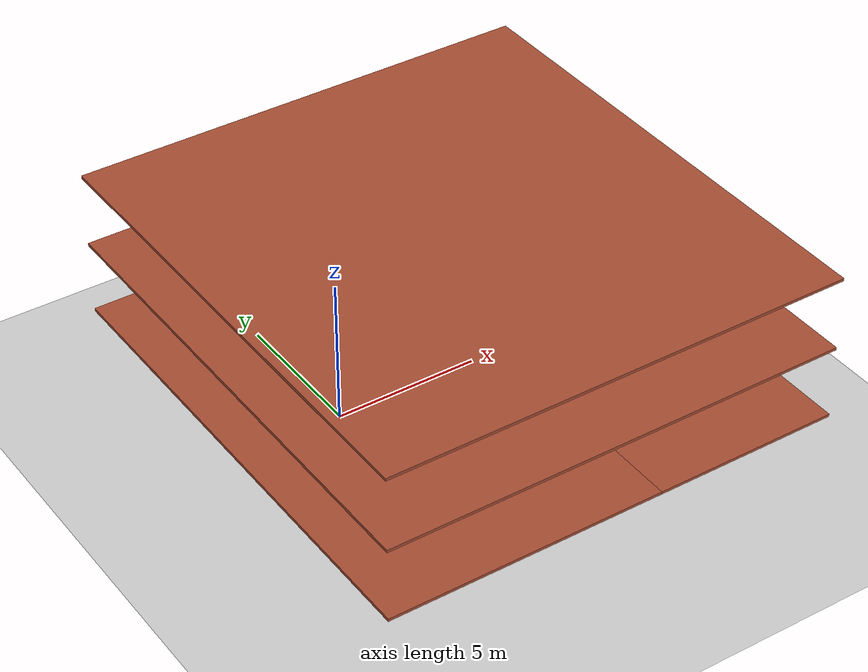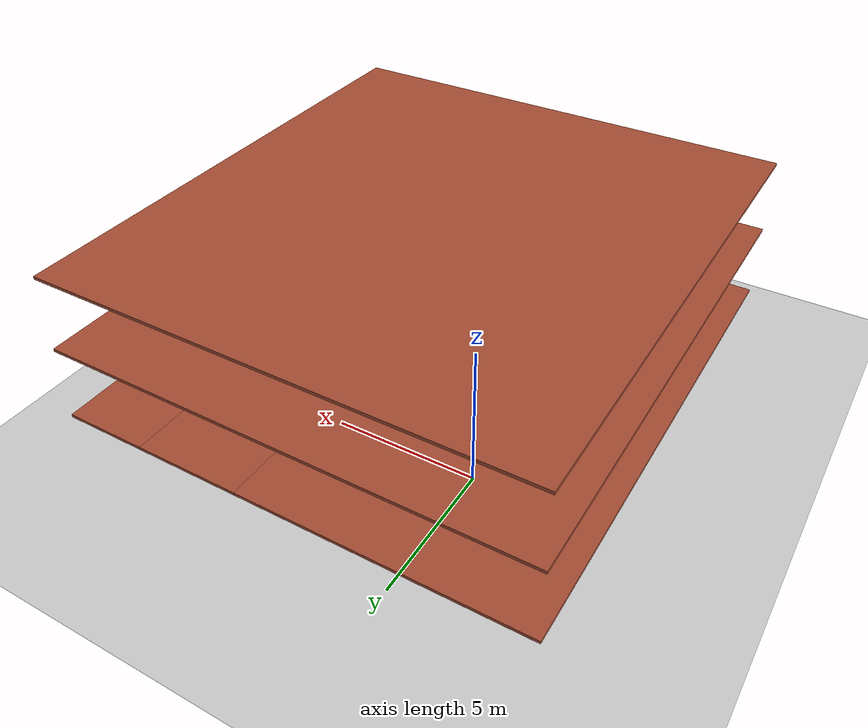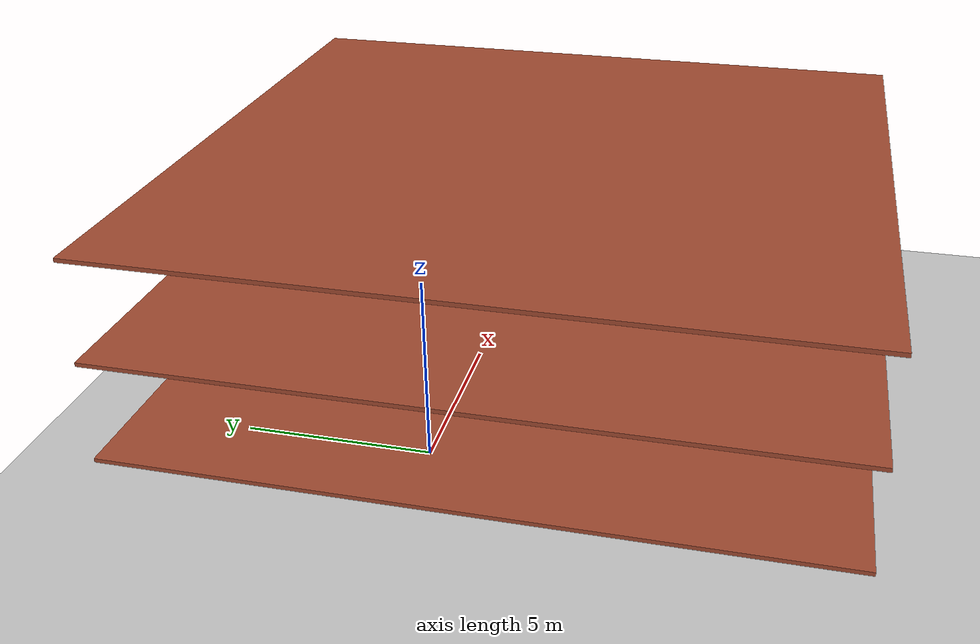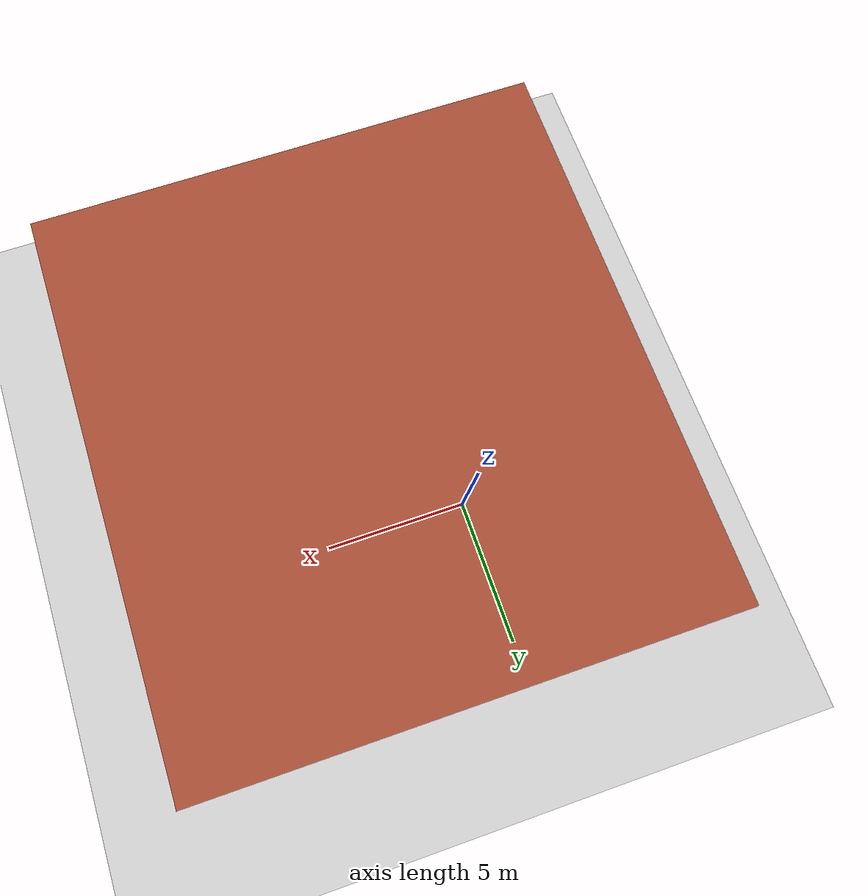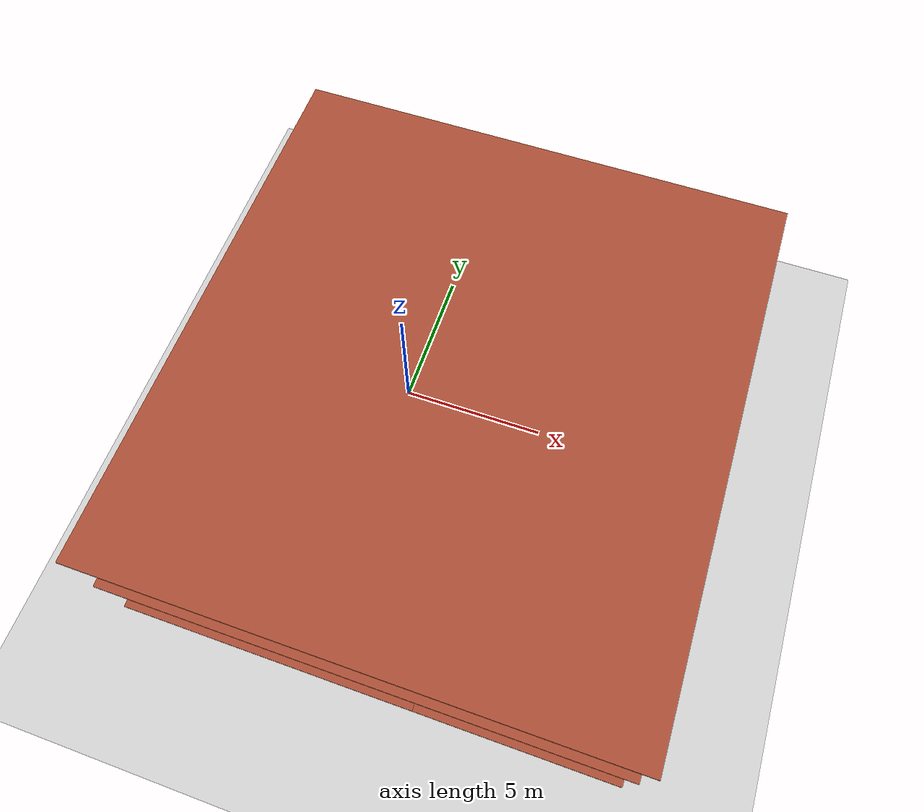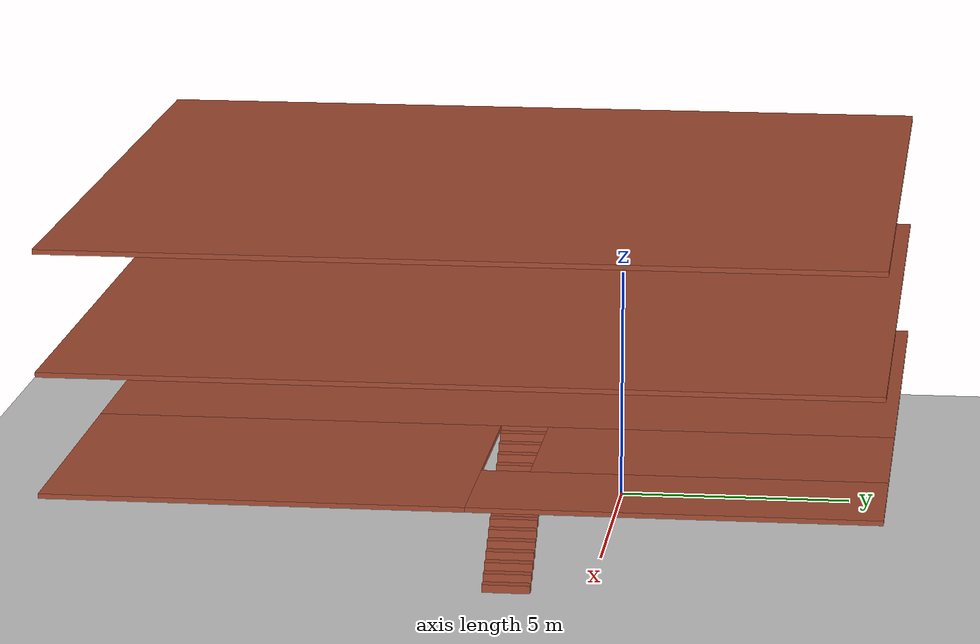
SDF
<sdf version="1.7">
 <world name="default">
  <model name="ground_plane">
   <static>1</static>
   <link name="link">
    <collision name="collision">
     <geometry><plane><normal>0 0 1</normal><size>300 300</size></plane></geometry>
     <surface>
      <contact><collide_bitmask>65535</collide_bitmask></contact>
      <friction><ode><mu>100</mu><mu2>50</mu2></ode></friction>
     </surface>
    </collision>
    <visual name="visual">
     <cast_shadows>0</cast_shadows>
     <geometry><plane><normal>0 0 1</normal><size>300 300</size></plane></geometry>
     <material>
      <script><uri>file://media/materials/scripts/gazebo.material</uri><name>Gazebo/Grey</name></script>
     </material>
    </visual>
   </link>
  </model>
  <model name="Drone_House">
   <pose>2.65602 -2.34694 0 0 -0 0</pose>
   <link name="Floor_0">
    <pose>-1e-06 0 2.5 0 -0 0</pose>
    <visual name="Floor_0_Visual_0">
     <pose>-3.13292 0 0.05 0 -0 0</pose>
     <geometry><box><size>9.33629 16.85 0.1</size></box></geometry>
     <material>
      <script><uri>file://media/materials/scripts/gazebo.material</uri><name>Gazebo/Bricks</name></script>
      <ambient>1 1 1 1</ambient>
     </material>
     <meta><layer>1</layer></meta>
    </visual>
    <collision name="Floor_0_Collision_0">
     <geometry><box><size>9.33629 16.85 0.1</size></box></geometry>
     <pose>-3.13292 0 0.05 0 -0 0</pose>
    </collision>
    <visual name="Floor_0_Visual_1">
     <pose>4.66814 -4.13229 0.05 0 -0 0</pose>
     <geometry><box><size>6.26584 8.58542 0.1</size></box></geometry>
     <material>
      <script><uri>file://media/materials/scripts/gazebo.material</uri><name>Gazebo/Bricks</name></script>
      <ambient>1 1 1 1</ambient>
     </material>
     <meta><layer>1</layer></meta>
    </visual>
    <collision name="Floor_0_Collision_1">
     <geometry><box><size>6.26584 8.58542 0.1</size></box></geometry>
     <pose>4.66814 -4.13229 0.05 0 -0 0</pose>
    </collision>
    <visual name="Floor_0_Visual_2">
     <pose>6.41814 4.29271 0.05 0 -0 0</pose>
     <geometry><box><size>2.76584 8.26458 0.1</size></box></geometry>
     <material>
      <script><uri>file://media/materials/scripts/gazebo.material</uri><name>Gazebo/Bricks</name></script>
      <ambient>1 1 1 1</ambient>
     </material>
     <meta><layer>1</layer></meta>
    </visual>
    <collision name="Floor_0_Collision_2">
     <geometry><box><size>2.76584 8.26458 0.1</size></box></geometry>
     <pose>6.41814 4.29271 0.05 0 -0 0</pose>
    </collision>
    <visual name="Floor_0_Visual_3">
     <pose>3.28522 4.79271 0.05 0 -0 0</pose>
     <geometry><box><size>3.5 7.26458 0.1</size></box></geometry>
     <material>
      <script><uri>file://media/materials/scripts/gazebo.material</uri><name>Gazebo/Bricks</name></script>
      <ambient>1 1 1 1</ambient>
     </material>
     <meta><layer>1</layer></meta>
    </visual>
    <collision name="Floor_0_Collision_3">
     <geometry><box><size>3.5 7.26458 0.1</size></box></geometry>
     <pose>3.28522 4.79271 0.05 0 -0 0</pose>
    </collision>
   </link>
   <link name="Floor_5">
    <collision name="Floor_5_Collision">
     <geometry><box><size>15.6021 16.85 0.1</size></box></geometry>
     <pose>0 0 0.05 0 -0 0</pose>
    </collision>
    <visual name="Floor_5_Visual">
     <pose>0 0 0.05 0 -0 0</pose>
     <geometry><box><size>15.6021 16.85 0.1</size></box></geometry>
     <material>
      <script><uri>file://media/materials/scripts/gazebo.material</uri><name>Gazebo/Bricks</name></script>
      <ambient>1 1 1 1</ambient>
     </material>
     <meta><layer>2</layer></meta>
    </visual>
    <pose>-1e-06 0 5 0 -0 0</pose>
   </link>
   <link name="Floor_6">
    <collision name="Floor_6_Collision">
     <geometry><box><size>15.6021 16.85 0.1</size></box></geometry>
     <pose>0 0 0.05 0 -0 0</pose>
    </collision>
    <visual name="Floor_6_Visual">
     <pose>0 0 0.05 0 -0 0</pose>
     <geometry><box><size>15.6021 16.85 0.1</size></box></geometry>
     <material>
      <script><uri>file://media/materials/scripts/gazebo.material</uri><name>Gazebo/Bricks</name></script>
      <ambient>1 1 1 1</ambient>
     </material>
     <meta><layer>3</layer></meta>
    </visual>
    <pose>-1e-06 0 7.5 0 -0 0</pose>
   </link>
   <link name="Stairs_0">
    <visual name="Stairs_0_Visual_0">
     <pose>4.91856 0.660416 0.083333 0 -0 -1.5708</pose>
     <geometry><box><size>1 0.233333 0.166667</size></box></geometry>
     <material>
      <script><uri>file://media/materials/scripts/gazebo.material</uri><name>Gazebo/Bricks</name></script>
      <ambient>1 1 1 1</ambient>
     </material>
     <meta><layer>0</layer></meta>
    </visual>
    <collision name="Stairs_0_Collision_0">
     <geometry><box><size>1 0.233333 0.166667</size></box></geometry>
     <pose>4.91856 0.660416 0.083333 0 -0 -1.5708</pose>
    </collision>
    <visual name="Stairs_0_Visual_1">
     <pose>4.68522 0.660416 0.25 0 -0 -1.5708</pose>
     <geometry><box><size>1 0.233333 0.166667</size></box></geometry>
     <material>
      <script><uri>file://media/materials/scripts/gazebo.material</uri><name>Gazebo/Bricks</name></script>
      <ambient>1 1 1 1</ambient>
     </material>
     <meta><layer>0</layer></meta>
    </visual>
    <collision name="Stairs_0_Collision_1">
     <geometry><box><size>1 0.233333 0.166667</size></box></geometry>
     <pose>4.68522 0.660416 0.25 0 -0 -1.5708</pose>
    </collision>
    <visual name="Stairs_0_Visual_2">
     <pose>4.45189 0.660416 0.416667 0 -0 -1.5708</pose>
     <geometry><box><size>1 0.233333 0.166667</size></box></geometry>
     <material>
      <script><uri>file://media/materials/scripts/gazebo.material</uri><name>Gazebo/Bricks</name></script>
      <ambient>1 1 1 1</ambient>
     </material>
     <meta><layer>0</layer></meta>
    </visual>
    <collision name="Stairs_0_Collision_2">
     <geometry><box><size>1 0.233333 0.166667</size></box></geometry>
     <pose>4.45189 0.660416 0.416667 0 -0 -1.5708</pose>
    </collision>
    <visual name="Stairs_0_Visual_3">
     <pose>4.21856 0.660416 0.583333 0 -0 -1.5708</pose>
     <geometry><box><size>1 0.233333 0.166667</size></box></geometry>
     <material>
      <script><uri>file://media/materials/scripts/gazebo.material</uri><name>Gazebo/Bricks</name></script>
      <ambient>1 1 1 1</ambient>
     </material>
     <meta><layer>0</layer></meta>
    </visual>
    <collision name="Stairs_0_Collision_3">
     <geometry><box><size>1 0.233333 0.166667</size></box></geometry>
     <pose>4.21856 0.660416 0.583333 0 -0 -1.5708</pose>
    </collision>
    <visual name="Stairs_0_Visual_4">
     <pose>3.98522 0.660417 0.75 0 -0 -1.5708</pose>
     <geometry><box><size>1 0.233333 0.166667</size></box></geometry>
     <material>
      <script><uri>file://media/materials/scripts/gazebo.material</uri><name>Gazebo/Bricks</name></script>
      <ambient>1 1 1 1</ambient>
     </material>
     <meta><layer>0</layer></meta>
    </visual>
    <collision name="Stairs_0_Collision_4">
     <geometry><box><size>1 0.233333 0.166667</size></box></geometry>
     <pose>3.98522 0.660417 0.75 0 -0 -1.5708</pose>
    </collision>
    <visual name="Stairs_0_Visual_5">
     <pose>3.75189 0.660417 0.916667 0 -0 -1.5708</pose>
     <geometry><box><size>1 0.233333 0.166667</size></box></geometry>
     <material>
      <script><uri>file://media/materials/scripts/gazebo.material</uri><name>Gazebo/Bricks</name></script>
      <ambient>1 1 1 1</ambient>
     </material>
     <meta><layer>0</layer></meta>
    </visual>
    <collision name="Stairs_0_Collision_5">
     <geometry><box><size>1 0.233333 0.166667</size></box></geometry>
     <pose>3.75189 0.660417 0.916667 0 -0 -1.5708</pose>
    </collision>
    <visual name="Stairs_0_Visual_6">
     <pose>3.51856 0.660417 1.08333 0 -0 -1.5708</pose>
     <geometry><box><size>1 0.233333 0.166667</size></box></geometry>
     <material>
      <script><uri>file://media/materials/scripts/gazebo.material</uri><name>Gazebo/Bricks</name></script>
      <ambient>1 1 1 1</ambient>
     </material>
     <meta><layer>0</layer></meta>
    </visual>
    <collision name="Stairs_0_Collision_6">
     <geometry><box><size>1 0.233333 0.166667</size></box></geometry>
     <pose>3.51856 0.660417 1.08333 0 -0 -1.5708</pose>
    </collision>
    <visual name="Stairs_0_Visual_7">
     <pose>3.28522 0.660417 1.25 0 -0 -1.5708</pose>
     <geometry><box><size>1 0.233333 0.166667</size></box></geometry>
     <material>
      <script><uri>file://media/materials/scripts/gazebo.material</uri><name>Gazebo/Bricks</name></script>
      <ambient>1 1 1 1</ambient>
     </material>
     <meta><layer>0</layer></meta>
    </visual>
    <collision name="Stairs_0_Collision_7">
     <geometry><box><size>1 0.233333 0.166667</size></box></geometry>
     <pose>3.28522 0.660417 1.25 0 -0 -1.5708</pose>
    </collision>
    <visual name="Stairs_0_Visual_8">
     <pose>3.05189 0.660417 1.41667 0 -0 -1.5708</pose>
     <geometry><box><size>1 0.233333 0.166667</size></box></geometry>
     <material>
      <script><uri>file://media/materials/scripts/gazebo.material</uri><name>Gazebo/Bricks</name></script>
      <ambient>1 1 1 1</ambient>
     </material>
     <meta><layer>0</layer></meta>
    </visual>
    <collision name="Stairs_0_Collision_8">
     <geometry><box><size>1 0.233333 0.166667</size></box></geometry>
     <pose>3.05189 0.660417 1.41667 0 -0 -1.5708</pose>
    </collision>
    <visual name="Stairs_0_Visual_9">
     <pose>2.81856 0.660417 1.58333 0 -0 -1.5708</pose>
     <geometry><box><size>1 0.233333 0.166667</size></box></geometry>
     <material>
      <script><uri>file://media/materials/scripts/gazebo.material</uri><name>Gazebo/Bricks</name></script>
      <ambient>1 1 1 1</ambient>
     </material>
     <meta><layer>0</layer></meta>
    </visual>
    <collision name="Stairs_0_Collision_9">
     <geometry><box><size>1 0.233333 0.166667</size></box></geometry>
     <pose>2.81856 0.660417 1.58333 0 -0 -1.5708</pose>
    </collision>
    <visual name="Stairs_0_Visual_10">
     <pose>2.58522 0.660417 1.75 0 -0 -1.5708</pose>
     <geometry><box><size>1 0.233333 0.166667</size></box></geometry>
     <material>
      <script><uri>file://media/materials/scripts/gazebo.material</uri><name>Gazebo/Bricks</name></script>
      <ambient>1 1 1 1</ambient>
     </material>
     <meta><layer>0</layer></meta>
    </visual>
    <collision name="Stairs_0_Collision_10">
     <geometry><box><size>1 0.233333 0.166667</size></box></geometry>
     <pose>2.58522 0.660417 1.75 0 -0 -1.5708</pose>
    </collision>
    <visual name="Stairs_0_Visual_11">
     <pose>2.35189 0.660417 1.91667 0 -0 -1.5708</pose>
     <geometry><box><size>1 0.233333 0.166667</size></box></geometry>
     <material>
      <script><uri>file://media/materials/scripts/gazebo.material</uri><name>Gazebo/Bricks</name></script>
      <ambient>1 1 1 1</ambient>
     </material>
     <meta><layer>0</layer></meta>
    </visual>
    <collision name="Stairs_0_Collision_11">
     <geometry><box><size>1 0.233333 0.166667</size></box></geometry>
     <pose>2.35189 0.660417 1.91667 0 -0 -1.5708</pose>
    </collision>
    <visual name="Stairs_0_Visual_12">
     <pose>2.11856 0.660417 2.08333 0 -0 -1.5708</pose>
     <geometry><box><size>1 0.233333 0.166667</size></box></geometry>
     <material>
      <script><uri>file://media/materials/scripts/gazebo.material</uri><name>Gazebo/Bricks</name></script>
      <ambient>1 1 1 1</ambient>
     </material>
     <meta><layer>0</layer></meta>
    </visual>
    <collision name="Stairs_0_Collision_12">
     <geometry><box><size>1 0.233333 0.166667</size></box></geometry>
     <pose>2.11856 0.660417 2.08333 0 -0 -1.5708</pose>
    </collision>
    <visual name="Stairs_0_Visual_13">
     <pose>1.88522 0.660417 2.25 0 -0 -1.5708</pose>
     <geometry><box><size>1 0.233333 0.166667</size></box></geometry>
     <material>
      <script><uri>file://media/materials/scripts/gazebo.material</uri><name>Gazebo/Bricks</name></script>
      <ambient>1 1 1 1</ambient>
     </material>
     <meta><layer>0</layer></meta>
    </visual>
    <collision name="Stairs_0_Collision_13">
     <geometry><box><size>1 0.233333 0.166667</size></box></geometry>
     <pose>1.88522 0.660417 2.25 0 -0 -1.5708</pose>
    </collision>
    <visual name="Stairs_0_Visual_14">
     <pose>1.65189 0.660417 2.41667 0 -0 -1.5708</pose>
     <geometry><box><size>1 0.233333 0.166667</size></box></geometry>
     <material>
      <script><uri>file://media/materials/scripts/gazebo.material</uri><name>Gazebo/Bricks</name></script>
      <ambient>1 1 1 1</ambient>
     </material>
     <meta><layer>0</layer></meta>
    </visual>
    <collision name="Stairs_0_Collision_14">
     <geometry><box><size>1 0.233333 0.166667</size></box></geometry>
     <pose>1.65189 0.660417 2.41667 0 -0 -1.5708</pose>
    </collision>
   </link>
   <static>1</static>
  </model>
 </world>
</sdf>
